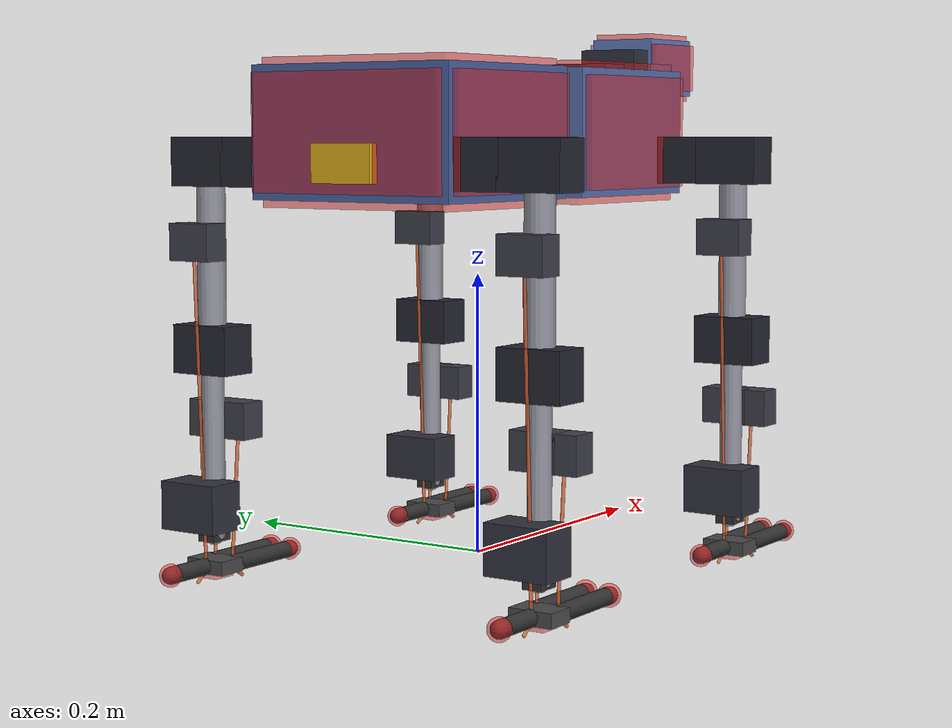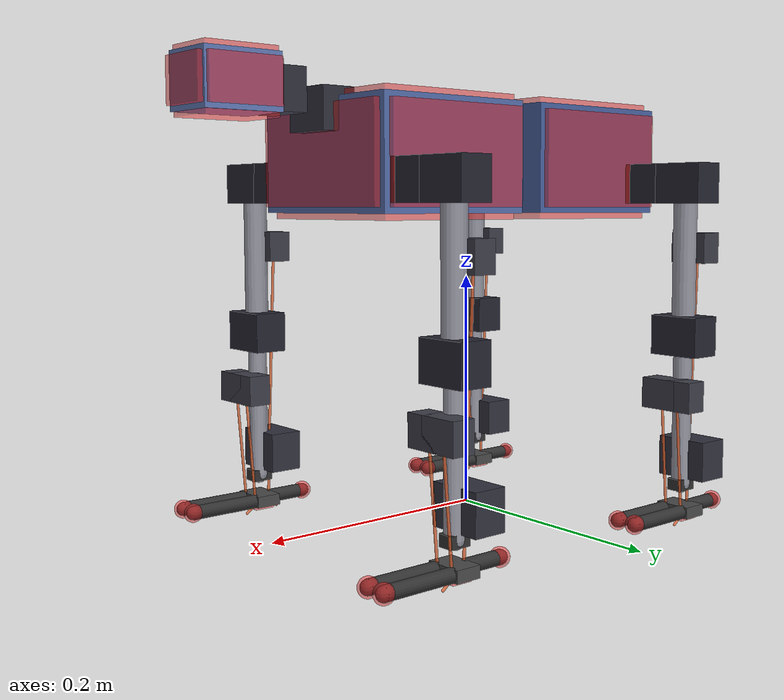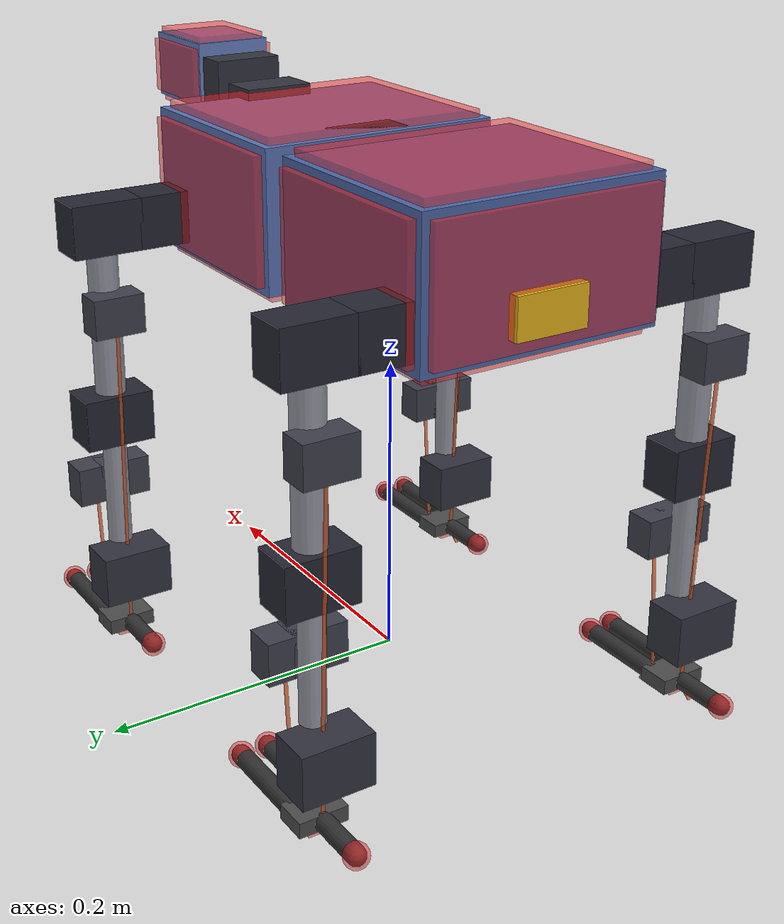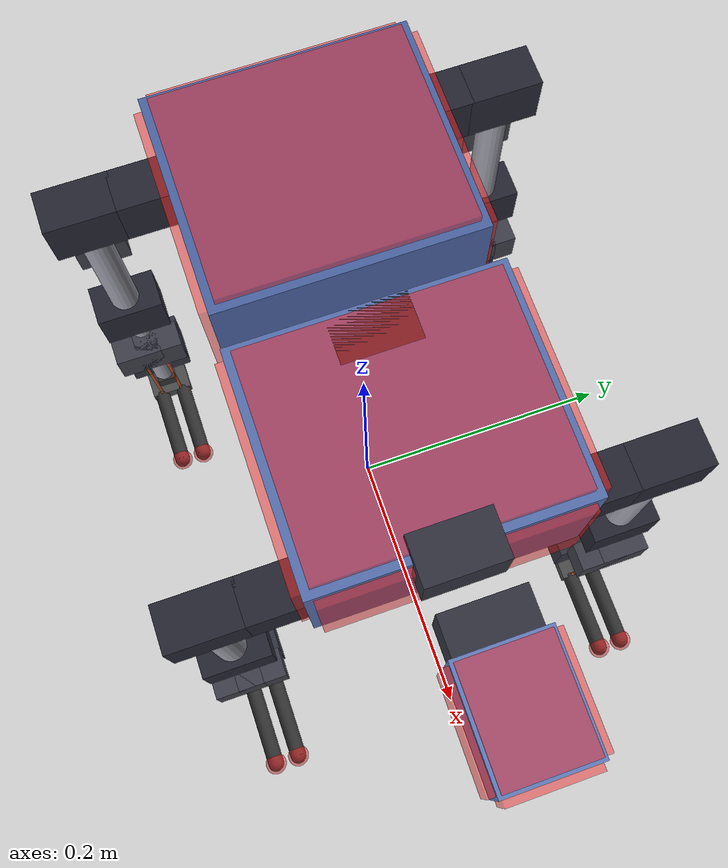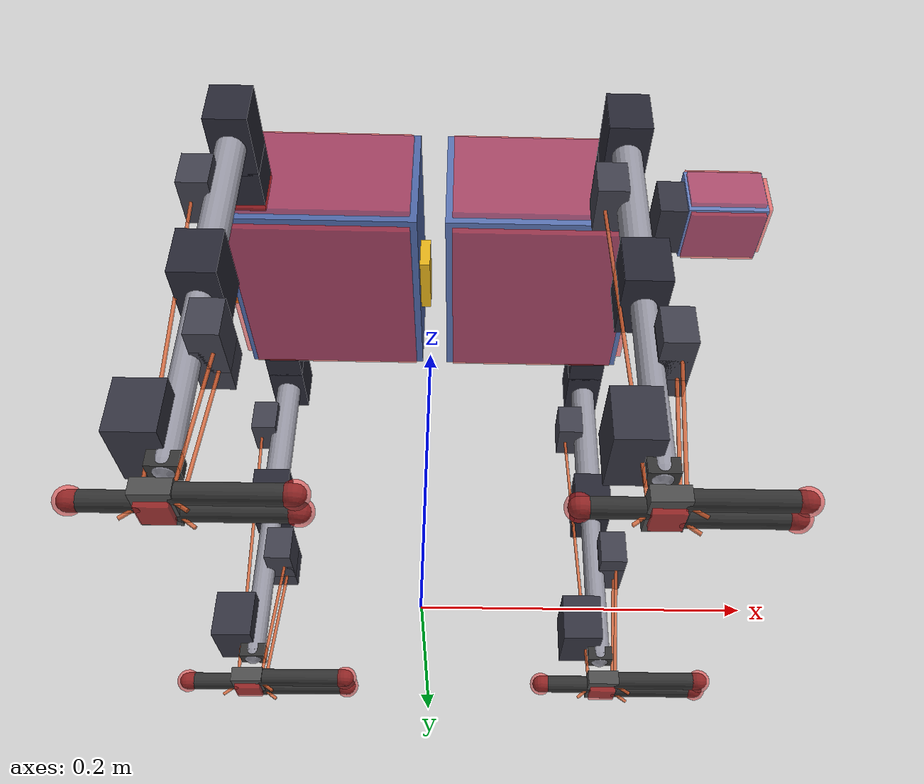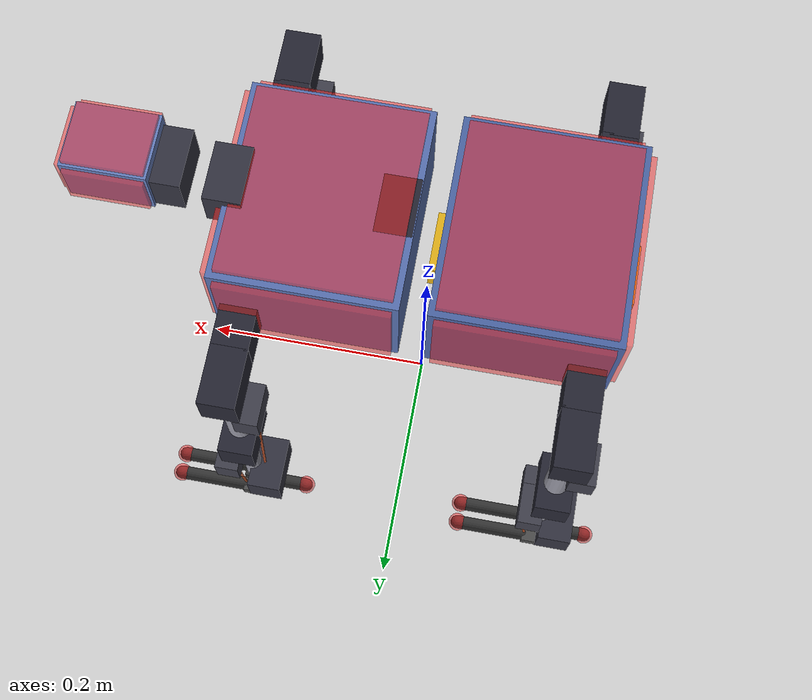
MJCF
<mujoco model="don2">
  <compiler angle="radian" autolimits="true"/>
  <option timestep="0.002" gravity="0 0 -9.81" integrator="implicitfast"/>

  <default>
    <!-- 다리 메인 서보: XM430-W350 (위치제어 서보 그대로 모사) -->
    <default class="xm430">
      <geom type="box" size="0.0143 0.0233 0.017" mass="0.082" contype="0" conaffinity="0" rgba="0.15 0.15 0.2 1"/>
      <joint damping="0.35" armature="0.008" frictionloss="0.06"/>
      <position kp="8" forcerange="-4.1 4.1"/>
    </default>
    <!-- 발목/목 서보: XL430-W250 -->
    <default class="xl430">
      <geom type="box" size="0.0143 0.0233 0.017" mass="0.057" contype="0" conaffinity="0" rgba="0.2 0.2 0.25 1"/>
      <joint damping="0.25" armature="0.005" frictionloss="0.04"/>
      <position kp="4" forcerange="-1.4 1.4"/>
    </default>
    <!-- 발가락 텐던 스풀 모터: XL330-M288 (스풀 r=6mm → 최대 장력 ~86N, 사용범위 0~15N) -->
    <default class="xl330">
      <geom type="box" size="0.010 0.017 0.013" mass="0.023" contype="0" conaffinity="0" rgba="0.25 0.25 0.3 1"/>
    </default>
    <!-- 구조재: 탄소튜브/알루미늄 브래킷 (질량은 각 geom에 명시) -->
    <default class="link">
      <geom type="capsule" rgba="0.6 0.6 0.65 1" friction="1.0 0.01 0.001"/>
    </default>
    <!-- 발가락: 고무 코팅 팁 (마찰 높음), 스프링 복원(신전) + 텐던 굴곡.
         깊은 조임(약 115도)이 가능하도록: 넓은 range + 약한 스프링(0.08) + 굵은 모멘트암(삽입점 10mm) -->
    <default class="toe">
      <joint type="hinge" range="-0.25 2.0" stiffness="0.08" springref="0" damping="0.015" armature="0.0005"/>
      <geom type="capsule" size="0.006" mass="0.008" rgba="0.2 0.2 0.2 1" friction="1.4 0.02 0.002"/>
    </default>
    <!-- 접촉센서 패드: group 1 = 뷰어 기본 표시. 표면에 붉은 반투명 패드로 항상 보임 -->
    <default class="touchsite">
      <site rgba="1 0.15 0.15 0.5" group="1"/>
    </default>
    <default class="mountsite">
      <site rgba="0.3 1 0.3 0.5" group="4" size="0.004"/>
    </default>
    <default class="tendonsite">
      <site rgba="0.9 0.5 0.2 0.6" group="5" size="0.0025"/>
    </default>
  </default>

  <worldbody>
    <!-- ============ 하체(후방 몸통): 배터리 + 뒷다리. 루트 바디 ============ -->
    <body name="torso_rear" pos="0 0 0.30">
      <freejoint/>
      <geom name="torso_rear_frame" type="box" size="0.07 0.08 0.045" pos="-0.08 0 0" mass="0.40"
            rgba="0.3 0.4 0.65 1" friction="1.0 0.005 0.0001"/>
      <!-- 배터리: 3S LiPo 5000mAh, 155x48x26mm, 370g - 하체 하부 배치 -->
      <geom name="battery" type="box" size="0.0775 0.024 0.013" pos="-0.08 0 -0.02" mass="0.37"
            contype="0" conaffinity="0" rgba="0.9 0.7 0.1 1"/>

      <!-- 하체 표면 접촉 센서 5개 -->
      <site name="belly_b_touch" class="touchsite" type="box" pos="-0.08 0 -0.046" size="0.065 0.075 0.004"/>
      <site name="back_b_touch" class="touchsite" type="box" pos="-0.08 0 0.046" size="0.065 0.075 0.004"/>
      <site name="flank_l_b_touch" class="touchsite" type="box" pos="-0.08 0.081 0" size="0.065 0.004 0.04"/>
      <site name="flank_r_b_touch" class="touchsite" type="box" pos="-0.08 -0.081 0" size="0.065 0.004 0.04"/>
      <site name="bumper_b_touch" class="touchsite" type="box" pos="-0.151 0 0" size="0.004 0.075 0.04"/>

      <!-- ============ 상체(전방 몸통): 허리 3자유도(팬/틸트/롤, XM430x3)로 연결 ============ -->
      <body name="torso_front" pos="0.01 0 0">
        <joint name="spine_yaw" axis="0 0 1" range="-0.35 0.35" class="xm430" damping="0.8"/>
        <joint name="spine_pitch" axis="0 1 0" range="-0.3 0.3" class="xm430" damping="0.8"/>
        <joint name="spine_roll" axis="1 0 0" range="-0.25 0.25" class="xm430" damping="0.8"/>
        <!-- 허리 서보 3개 (XM430, 척추부에 물리 배치) -->
        <geom class="xm430" pos="0.015 0.026 0"/>
        <geom class="xm430" pos="0.015 -0.026 0"/>
        <geom class="xm430" pos="0.015 0 0.028"/>
        <geom name="torso_front_frame" type="box" size="0.07 0.08 0.045" pos="0.07 0 0" mass="0.35"
              rgba="0.35 0.45 0.7 1" friction="1.0 0.005 0.0001"/>
        <!-- 온보드 컴퓨터: RPi4급, 100g - 상체 배치 -->
        <geom name="computer" type="box" size="0.035 0.028 0.010" pos="0.05 0 0.02" mass="0.10"
              contype="0" conaffinity="0" rgba="0.1 0.6 0.3 1"/>

        <!-- IMU (BNO085급 9축) 상체 중심 -->
        <site name="imu_site" pos="0.05 0 0.01" class="mountsite"/>
        <!-- 배 밑 바닥색/반사율 센서 (TCS34725급) 마운트 -->
        <site name="ground_sensor_site" pos="0.07 0 -0.047" class="mountsite"/>

        <!-- 상체 표면 접촉 센서 5개 -->
        <site name="belly_f_touch" class="touchsite" type="box" pos="0.07 0 -0.046" size="0.065 0.075 0.004"/>
        <site name="back_f_touch" class="touchsite" type="box" pos="0.07 0 0.046" size="0.065 0.075 0.004"/>
        <site name="flank_l_f_touch" class="touchsite" type="box" pos="0.07 0.081 0" size="0.065 0.004 0.04"/>
        <site name="flank_r_f_touch" class="touchsite" type="box" pos="0.07 -0.081 0" size="0.065 0.004 0.04"/>
        <site name="bumper_f_touch" class="touchsite" type="box" pos="0.141 0 0" size="0.004 0.075 0.04"/>

        <!-- ================= 머리 (전방, 2축 목 + 감각기관 집중) ================= -->
        <body name="neck_base" pos="0.14 0 0.035">
        <joint name="neck_yaw" axis="0 0 1" range="-1.2 1.2" class="xl430"/>
        <geom class="xl430"/>
        <body name="head" pos="0.055 0 0.012">
          <joint name="neck_pitch" axis="0 1 0" range="-0.9 0.6" class="xl430"/>
          <geom class="xl430" pos="-0.012 0 0"/>
          <geom name="head_shell" type="box" size="0.032 0.026 0.022" pos="0.028 0 0.004" mass="0.060"
                rgba="0.4 0.5 0.75 1" friction="1.0 0.005 0.0001"/>

          <!-- 가상센서 마운트: 콧구멍(냄새 좌/우), 광센서 -->
          <site name="nostril_l" pos="0.061 0.013 0.006" class="mountsite"/>
          <site name="nostril_r" pos="0.061 -0.013 0.006" class="mountsite"/>
          <site name="light_sensor_site" pos="0.028 0 0.027" class="mountsite"/>

          <!-- rangefinder 3개: 전방 + 좌/우 절벽감지 (site +Z 방향으로 발사) -->
          <site name="rf_fwd" pos="0.061 0 0.014" zaxis="1 0 0" size="0.003" rgba="0 0.8 1 0.7"/>
          <site name="rf_cliff_l" pos="0.055 0.014 -0.016" zaxis="0.55 0 -0.835" size="0.003" rgba="0 0.8 1 0.7"/>
          <site name="rf_cliff_r" pos="0.055 -0.014 -0.016" zaxis="0.55 0 -0.835" size="0.003" rgba="0 0.8 1 0.7"/>

          <!-- 머리 접촉 센서 5개 -->
          <site name="head_nose_touch" class="touchsite" type="box" pos="0.061 0 0.004" size="0.003 0.024 0.018"/>
          <site name="head_top_touch" class="touchsite" type="box" pos="0.028 0 0.027" size="0.030 0.024 0.003"/>
          <site name="head_chin_touch" class="touchsite" type="box" pos="0.028 0 -0.019" size="0.030 0.024 0.003"/>
          <site name="head_cheek_l_touch" class="touchsite" type="box" pos="0.028 0.027 0.004" size="0.030 0.003 0.018"/>
          <site name="head_cheek_r_touch" class="touchsite" type="box" pos="0.028 -0.027 0.004" size="0.030 0.003 0.018"/>
        </body>
      </body>

      <!-- ================= FL 다리 (상체 소속) ================= -->
      <body name="FL_hip" pos="0.12 0.09 -0.02">
        <joint name="FL_abd" axis="1 0 0" range="-0.5 0.5" class="xm430"/>
        <geom class="xm430"/>
        <body name="FL_thigh" pos="0 0.045 0">
          <joint name="FL_hip_pitch" axis="0 1 0" range="-1.5 1.5" class="xm430"/>
          <geom class="xm430"/>
          <geom name="FL_thigh_link" class="link" fromto="0 0 0 0 0 -0.13" size="0.010" mass="0.040"/>
          <geom class="xm430" pos="0 0 -0.13"/> <!-- 무릎 서보 (허벅지 하단 장착) -->
          <geom class="xl330" pos="-0.014 0 -0.055"/> <!-- 뒷발가락 텐던 스풀 모터 (허벅지 후면) -->
          <site name="FL_spool_b" pos="-0.018 0 -0.060" class="tendonsite"/>
          <body name="FL_calf" pos="0 0 -0.13">
            <joint name="FL_knee" axis="0 1 0" range="-2.4 -0.3" class="xm430"/>
            <geom name="FL_calf_link" class="link" fromto="0 0 0 0 0 -0.13" size="0.008" mass="0.030"/>
            <geom class="xl330" pos="0.013 0.008 -0.050"/>  <!-- 앞발가락1 스풀 (종아리 전면) -->
            <geom class="xl330" pos="0.013 -0.008 -0.050"/> <!-- 앞발가락2 스풀 -->
            <site name="FL_spool_f1" pos="0.017 0.008 -0.056" class="tendonsite"/>
            <site name="FL_spool_f2" pos="0.017 -0.008 -0.056" class="tendonsite"/>
            <site name="FL_calf_back" pos="-0.011 0 -0.095" class="tendonsite"/>
            <geom class="xl430" pos="-0.014 0 -0.108"/> <!-- 발목 서보: 종아리 하단 장착, 브래킷 링키지로 발목 구동(말단 관성 절감) -->
            <body name="FL_foot" pos="0 0 -0.13">
              <joint name="FL_ankle" axis="0 1 0" range="-0.8 1.2" class="xl430"/>
              <geom name="FL_ankle_bracket" type="box" size="0.009 0.007 0.005" mass="0.008"
                    contype="0" conaffinity="0" rgba="0.2 0.2 0.2 1"/>
              <geom name="FL_foot_plate" type="box" size="0.011 0.016 0.005" pos="0 0 -0.022" mass="0.008"
                    rgba="0.3 0.3 0.3 1" friction="1.2 0.01 0.001"/>
              <site name="FL_pulley_f1" pos="0.009 0.008 -0.025" class="tendonsite"/>
              <site name="FL_pulley_f2" pos="0.009 -0.008 -0.025" class="tendonsite"/>
              <site name="FL_pulley_b" pos="-0.009 0 -0.025" class="tendonsite"/>
              <site name="FL_sole_touch" class="touchsite" type="box" pos="0 0 -0.028" size="0.009 0.009 0.0025"/>
              <body name="FL_toe_f1" pos="0.011 0.009 -0.022">
                <joint name="FL_toe_f1_j" class="toe" axis="0 1 0"/>
                <geom class="toe" fromto="0 0 0 0.060 0 0" mass="0.012"/>
                <site name="FL_toe_f1_insert" pos="0.008 0 -0.010" class="tendonsite"/>
                <site name="FL_toe_f1_touch" class="touchsite" pos="0.060 0 0" size="0.008"/>
              </body>
              <body name="FL_toe_f2" pos="0.011 -0.009 -0.022">
                <joint name="FL_toe_f2_j" class="toe" axis="0 1 0"/>
                <geom class="toe" fromto="0 0 0 0.060 0 0" mass="0.012"/>
                <site name="FL_toe_f2_insert" pos="0.008 0 -0.010" class="tendonsite"/>
                <site name="FL_toe_f2_touch" class="touchsite" pos="0.060 0 0" size="0.008"/>
              </body>
              <body name="FL_toe_b" pos="-0.011 0 -0.022">
                <joint name="FL_toe_b_j" class="toe" axis="0 -1 0" range="-0.25 1.8"/>
                <geom class="toe" fromto="0 0 0 -0.034 0 0" mass="0.007"/>
                <site name="FL_toe_b_insert" pos="-0.007 0 -0.010" class="tendonsite"/>
                <site name="FL_toe_b_touch" class="touchsite" pos="-0.034 0 0" size="0.008"/>
              </body>
            </body>
          </body>
        </body>
      </body>

      <!-- ================= FR 다리 (상체 소속) ================= -->
      <body name="FR_hip" pos="0.12 -0.09 -0.02">
        <joint name="FR_abd" axis="1 0 0" range="-0.5 0.5" class="xm430"/>
        <geom class="xm430"/>
        <body name="FR_thigh" pos="0 -0.045 0">
          <joint name="FR_hip_pitch" axis="0 1 0" range="-1.5 1.5" class="xm430"/>
          <geom class="xm430"/>
          <geom name="FR_thigh_link" class="link" fromto="0 0 0 0 0 -0.13" size="0.010" mass="0.040"/>
          <geom class="xm430" pos="0 0 -0.13"/>
          <geom class="xl330" pos="-0.014 0 -0.055"/>
          <site name="FR_spool_b" pos="-0.018 0 -0.060" class="tendonsite"/>
          <body name="FR_calf" pos="0 0 -0.13">
            <joint name="FR_knee" axis="0 1 0" range="-2.4 -0.3" class="xm430"/>
            <geom name="FR_calf_link" class="link" fromto="0 0 0 0 0 -0.13" size="0.008" mass="0.030"/>
            <geom class="xl330" pos="0.013 0.008 -0.050"/>
            <geom class="xl330" pos="0.013 -0.008 -0.050"/>
            <site name="FR_spool_f1" pos="0.017 0.008 -0.056" class="tendonsite"/>
            <site name="FR_spool_f2" pos="0.017 -0.008 -0.056" class="tendonsite"/>
            <site name="FR_calf_back" pos="-0.011 0 -0.095" class="tendonsite"/>
            <geom class="xl430" pos="-0.014 0 -0.108"/>
            <body name="FR_foot" pos="0 0 -0.13">
              <joint name="FR_ankle" axis="0 1 0" range="-0.8 1.2" class="xl430"/>
              <geom name="FR_ankle_bracket" type="box" size="0.009 0.007 0.005" mass="0.008"
                    contype="0" conaffinity="0" rgba="0.2 0.2 0.2 1"/>
              <geom name="FR_foot_plate" type="box" size="0.011 0.016 0.005" pos="0 0 -0.022" mass="0.008"
                    rgba="0.3 0.3 0.3 1" friction="1.2 0.01 0.001"/>
              <site name="FR_pulley_f1" pos="0.009 0.008 -0.025" class="tendonsite"/>
              <site name="FR_pulley_f2" pos="0.009 -0.008 -0.025" class="tendonsite"/>
              <site name="FR_pulley_b" pos="-0.009 0 -0.025" class="tendonsite"/>
              <site name="FR_sole_touch" class="touchsite" type="box" pos="0 0 -0.028" size="0.009 0.009 0.0025"/>
              <body name="FR_toe_f1" pos="0.011 0.009 -0.022">
                <joint name="FR_toe_f1_j" class="toe" axis="0 1 0"/>
                <geom class="toe" fromto="0 0 0 0.060 0 0" mass="0.012"/>
                <site name="FR_toe_f1_insert" pos="0.008 0 -0.010" class="tendonsite"/>
                <site name="FR_toe_f1_touch" class="touchsite" pos="0.060 0 0" size="0.008"/>
              </body>
              <body name="FR_toe_f2" pos="0.011 -0.009 -0.022">
                <joint name="FR_toe_f2_j" class="toe" axis="0 1 0"/>
                <geom class="toe" fromto="0 0 0 0.060 0 0" mass="0.012"/>
                <site name="FR_toe_f2_insert" pos="0.008 0 -0.010" class="tendonsite"/>
                <site name="FR_toe_f2_touch" class="touchsite" pos="0.060 0 0" size="0.008"/>
              </body>
              <body name="FR_toe_b" pos="-0.011 0 -0.022">
                <joint name="FR_toe_b_j" class="toe" axis="0 -1 0" range="-0.25 1.8"/>
                <geom class="toe" fromto="0 0 0 -0.034 0 0" mass="0.007"/>
                <site name="FR_toe_b_insert" pos="-0.007 0 -0.010" class="tendonsite"/>
                <site name="FR_toe_b_touch" class="touchsite" pos="-0.034 0 0" size="0.008"/>
              </body>
            </body>
          </body>
        </body>
      </body>

      </body> <!-- torso_front 끝 -->

      <!-- ================= RL 다리 (하체 소속) ================= -->
      <body name="RL_hip" pos="-0.13 0.09 -0.02">
        <joint name="RL_abd" axis="1 0 0" range="-0.5 0.5" class="xm430"/>
        <geom class="xm430"/>
        <body name="RL_thigh" pos="0 0.045 0">
          <joint name="RL_hip_pitch" axis="0 1 0" range="-1.5 1.5" class="xm430"/>
          <geom class="xm430"/>
          <geom name="RL_thigh_link" class="link" fromto="0 0 0 0 0 -0.13" size="0.010" mass="0.040"/>
          <geom class="xm430" pos="0 0 -0.13"/>
          <geom class="xl330" pos="-0.014 0 -0.055"/>
          <site name="RL_spool_b" pos="-0.018 0 -0.060" class="tendonsite"/>
          <body name="RL_calf" pos="0 0 -0.13">
            <joint name="RL_knee" axis="0 1 0" range="-2.4 -0.3" class="xm430"/>
            <geom name="RL_calf_link" class="link" fromto="0 0 0 0 0 -0.13" size="0.008" mass="0.030"/>
            <geom class="xl330" pos="0.013 0.008 -0.050"/>
            <geom class="xl330" pos="0.013 -0.008 -0.050"/>
            <site name="RL_spool_f1" pos="0.017 0.008 -0.056" class="tendonsite"/>
            <site name="RL_spool_f2" pos="0.017 -0.008 -0.056" class="tendonsite"/>
            <site name="RL_calf_back" pos="-0.011 0 -0.095" class="tendonsite"/>
            <geom class="xl430" pos="-0.014 0 -0.108"/>
            <body name="RL_foot" pos="0 0 -0.13">
              <joint name="RL_ankle" axis="0 1 0" range="-0.8 1.2" class="xl430"/>
              <geom name="RL_ankle_bracket" type="box" size="0.009 0.007 0.005" mass="0.008"
                    contype="0" conaffinity="0" rgba="0.2 0.2 0.2 1"/>
              <geom name="RL_foot_plate" type="box" size="0.011 0.016 0.005" pos="0 0 -0.022" mass="0.008"
                    rgba="0.3 0.3 0.3 1" friction="1.2 0.01 0.001"/>
              <site name="RL_pulley_f1" pos="0.009 0.008 -0.025" class="tendonsite"/>
              <site name="RL_pulley_f2" pos="0.009 -0.008 -0.025" class="tendonsite"/>
              <site name="RL_pulley_b" pos="-0.009 0 -0.025" class="tendonsite"/>
              <site name="RL_sole_touch" class="touchsite" type="box" pos="0 0 -0.028" size="0.009 0.009 0.0025"/>
              <body name="RL_toe_f1" pos="0.011 0.009 -0.022">
                <joint name="RL_toe_f1_j" class="toe" axis="0 1 0"/>
                <geom class="toe" fromto="0 0 0 0.060 0 0" mass="0.012"/>
                <site name="RL_toe_f1_insert" pos="0.008 0 -0.010" class="tendonsite"/>
                <site name="RL_toe_f1_touch" class="touchsite" pos="0.060 0 0" size="0.008"/>
              </body>
              <body name="RL_toe_f2" pos="0.011 -0.009 -0.022">
                <joint name="RL_toe_f2_j" class="toe" axis="0 1 0"/>
                <geom class="toe" fromto="0 0 0 0.060 0 0" mass="0.012"/>
                <site name="RL_toe_f2_insert" pos="0.008 0 -0.010" class="tendonsite"/>
                <site name="RL_toe_f2_touch" class="touchsite" pos="0.060 0 0" size="0.008"/>
              </body>
              <body name="RL_toe_b" pos="-0.011 0 -0.022">
                <joint name="RL_toe_b_j" class="toe" axis="0 -1 0" range="-0.25 1.8"/>
                <geom class="toe" fromto="0 0 0 -0.034 0 0" mass="0.007"/>
                <site name="RL_toe_b_insert" pos="-0.007 0 -0.010" class="tendonsite"/>
                <site name="RL_toe_b_touch" class="touchsite" pos="-0.034 0 0" size="0.008"/>
              </body>
            </body>
          </body>
        </body>
      </body>

      <!-- ================= RR 다리 ================= -->
      <body name="RR_hip" pos="-0.13 -0.09 -0.02">
        <joint name="RR_abd" axis="1 0 0" range="-0.5 0.5" class="xm430"/>
        <geom class="xm430"/>
        <body name="RR_thigh" pos="0 -0.045 0">
          <joint name="RR_hip_pitch" axis="0 1 0" range="-1.5 1.5" class="xm430"/>
          <geom class="xm430"/>
          <geom name="RR_thigh_link" class="link" fromto="0 0 0 0 0 -0.13" size="0.010" mass="0.040"/>
          <geom class="xm430" pos="0 0 -0.13"/>
          <geom class="xl330" pos="-0.014 0 -0.055"/>
          <site name="RR_spool_b" pos="-0.018 0 -0.060" class="tendonsite"/>
          <body name="RR_calf" pos="0 0 -0.13">
            <joint name="RR_knee" axis="0 1 0" range="-2.4 -0.3" class="xm430"/>
            <geom name="RR_calf_link" class="link" fromto="0 0 0 0 0 -0.13" size="0.008" mass="0.030"/>
            <geom class="xl330" pos="0.013 0.008 -0.050"/>
            <geom class="xl330" pos="0.013 -0.008 -0.050"/>
            <site name="RR_spool_f1" pos="0.017 0.008 -0.056" class="tendonsite"/>
            <site name="RR_spool_f2" pos="0.017 -0.008 -0.056" class="tendonsite"/>
            <site name="RR_calf_back" pos="-0.011 0 -0.095" class="tendonsite"/>
            <geom class="xl430" pos="-0.014 0 -0.108"/>
            <body name="RR_foot" pos="0 0 -0.13">
              <joint name="RR_ankle" axis="0 1 0" range="-0.8 1.2" class="xl430"/>
              <geom name="RR_ankle_bracket" type="box" size="0.009 0.007 0.005" mass="0.008"
                    contype="0" conaffinity="0" rgba="0.2 0.2 0.2 1"/>
              <geom name="RR_foot_plate" type="box" size="0.011 0.016 0.005" pos="0 0 -0.022" mass="0.008"
                    rgba="0.3 0.3 0.3 1" friction="1.2 0.01 0.001"/>
              <site name="RR_pulley_f1" pos="0.009 0.008 -0.025" class="tendonsite"/>
              <site name="RR_pulley_f2" pos="0.009 -0.008 -0.025" class="tendonsite"/>
              <site name="RR_pulley_b" pos="-0.009 0 -0.025" class="tendonsite"/>
              <site name="RR_sole_touch" class="touchsite" type="box" pos="0 0 -0.028" size="0.009 0.009 0.0025"/>
              <body name="RR_toe_f1" pos="0.011 0.009 -0.022">
                <joint name="RR_toe_f1_j" class="toe" axis="0 1 0"/>
                <geom class="toe" fromto="0 0 0 0.060 0 0" mass="0.012"/>
                <site name="RR_toe_f1_insert" pos="0.008 0 -0.010" class="tendonsite"/>
                <site name="RR_toe_f1_touch" class="touchsite" pos="0.060 0 0" size="0.008"/>
              </body>
              <body name="RR_toe_f2" pos="0.011 -0.009 -0.022">
                <joint name="RR_toe_f2_j" class="toe" axis="0 1 0"/>
                <geom class="toe" fromto="0 0 0 0.060 0 0" mass="0.012"/>
                <site name="RR_toe_f2_insert" pos="0.008 0 -0.010" class="tendonsite"/>
                <site name="RR_toe_f2_touch" class="touchsite" pos="0.060 0 0" size="0.008"/>
              </body>
              <body name="RR_toe_b" pos="-0.011 0 -0.022">
                <joint name="RR_toe_b_j" class="toe" axis="0 -1 0" range="-0.25 1.8"/>
                <geom class="toe" fromto="0 0 0 -0.034 0 0" mass="0.007"/>
                <site name="RR_toe_b_insert" pos="-0.007 0 -0.010" class="tendonsite"/>
                <site name="RR_toe_b_touch" class="touchsite" pos="-0.034 0 0" size="0.008"/>
              </body>
            </body>
          </body>
        </body>
      </body>
    </body>
  </worldbody>

  <!-- ================= 텐던 (발가락 굴곡 와이어) ================= -->
  <!-- 앞발가락: 종아리 스풀 → 발 앞 풀리 → 발가락 하면 삽입점. 당기면(단축) 굴곡, 스프링이 신전 복원.
       뒷발가락: 허벅지 스풀 → 종아리 후면 → 발 뒤 풀리 → 삽입점 (무릎·발목을 가로지르는 생체형 장텐던). -->
  <tendon>
    <spatial name="FL_toe_f1_t" width="0.0012" rgba="0.9 0.4 0.2 0.8">
      <site site="FL_spool_f1"/><site site="FL_pulley_f1"/><site site="FL_toe_f1_insert"/>
    </spatial>
    <spatial name="FL_toe_f2_t" width="0.0012" rgba="0.9 0.4 0.2 0.8">
      <site site="FL_spool_f2"/><site site="FL_pulley_f2"/><site site="FL_toe_f2_insert"/>
    </spatial>
    <spatial name="FL_toe_b_t" width="0.0012" rgba="0.9 0.4 0.2 0.8">
      <site site="FL_spool_b"/><site site="FL_calf_back"/><site site="FL_pulley_b"/><site site="FL_toe_b_insert"/>
    </spatial>
    <spatial name="FR_toe_f1_t" width="0.0012" rgba="0.9 0.4 0.2 0.8">
      <site site="FR_spool_f1"/><site site="FR_pulley_f1"/><site site="FR_toe_f1_insert"/>
    </spatial>
    <spatial name="FR_toe_f2_t" width="0.0012" rgba="0.9 0.4 0.2 0.8">
      <site site="FR_spool_f2"/><site site="FR_pulley_f2"/><site site="FR_toe_f2_insert"/>
    </spatial>
    <spatial name="FR_toe_b_t" width="0.0012" rgba="0.9 0.4 0.2 0.8">
      <site site="FR_spool_b"/><site site="FR_calf_back"/><site site="FR_pulley_b"/><site site="FR_toe_b_insert"/>
    </spatial>
    <spatial name="RL_toe_f1_t" width="0.0012" rgba="0.9 0.4 0.2 0.8">
      <site site="RL_spool_f1"/><site site="RL_pulley_f1"/><site site="RL_toe_f1_insert"/>
    </spatial>
    <spatial name="RL_toe_f2_t" width="0.0012" rgba="0.9 0.4 0.2 0.8">
      <site site="RL_spool_f2"/><site site="RL_pulley_f2"/><site site="RL_toe_f2_insert"/>
    </spatial>
    <spatial name="RL_toe_b_t" width="0.0012" rgba="0.9 0.4 0.2 0.8">
      <site site="RL_spool_b"/><site site="RL_calf_back"/><site site="RL_pulley_b"/><site site="RL_toe_b_insert"/>
    </spatial>
    <spatial name="RR_toe_f1_t" width="0.0012" rgba="0.9 0.4 0.2 0.8">
      <site site="RR_spool_f1"/><site site="RR_pulley_f1"/><site site="RR_toe_f1_insert"/>
    </spatial>
    <spatial name="RR_toe_f2_t" width="0.0012" rgba="0.9 0.4 0.2 0.8">
      <site site="RR_spool_f2"/><site site="RR_pulley_f2"/><site site="RR_toe_f2_insert"/>
    </spatial>
    <spatial name="RR_toe_b_t" width="0.0012" rgba="0.9 0.4 0.2 0.8">
      <site site="RR_spool_b"/><site site="RR_calf_back"/><site site="RR_pulley_b"/><site site="RR_toe_b_insert"/>
    </spatial>
  </tendon>

  <!-- ================= 액추에이터 ================= -->
  <actuator>
    <!-- 허리(상하체 연결): XM430 위치 서보 3축 (팬/틸트/롤) -->
    <position name="spine_yaw_act" joint="spine_yaw" class="xm430" ctrlrange="-0.35 0.35"/>
    <position name="spine_pitch_act" joint="spine_pitch" class="xm430" ctrlrange="-0.3 0.3"/>
    <position name="spine_roll_act" joint="spine_roll" class="xm430" ctrlrange="-0.25 0.25"/>
    <!-- 목: XL430 위치 서보 -->
    <position name="neck_yaw_act" joint="neck_yaw" class="xl430" ctrlrange="-1.2 1.2"/>
    <position name="neck_pitch_act" joint="neck_pitch" class="xl430" ctrlrange="-0.9 0.6"/>
    <!-- 다리: XM430(힙외전/힙피치/무릎) + XL430(발목) 위치 서보 -->
    <position name="FL_abd_act" joint="FL_abd" class="xm430" ctrlrange="-0.5 0.5"/>
    <position name="FL_hip_act" joint="FL_hip_pitch" class="xm430" ctrlrange="-1.5 1.5"/>
    <position name="FL_knee_act" joint="FL_knee" class="xm430" ctrlrange="-2.4 -0.3"/>
    <position name="FL_ankle_act" joint="FL_ankle" class="xl430" ctrlrange="-0.8 1.2"/>
    <position name="FR_abd_act" joint="FR_abd" class="xm430" ctrlrange="-0.5 0.5"/>
    <position name="FR_hip_act" joint="FR_hip_pitch" class="xm430" ctrlrange="-1.5 1.5"/>
    <position name="FR_knee_act" joint="FR_knee" class="xm430" ctrlrange="-2.4 -0.3"/>
    <position name="FR_ankle_act" joint="FR_ankle" class="xl430" ctrlrange="-0.8 1.2"/>
    <position name="RL_abd_act" joint="RL_abd" class="xm430" ctrlrange="-0.5 0.5"/>
    <position name="RL_hip_act" joint="RL_hip_pitch" class="xm430" ctrlrange="-1.5 1.5"/>
    <position name="RL_knee_act" joint="RL_knee" class="xm430" ctrlrange="-2.4 -0.3"/>
    <position name="RL_ankle_act" joint="RL_ankle" class="xl430" ctrlrange="-0.8 1.2"/>
    <position name="RR_abd_act" joint="RR_abd" class="xm430" ctrlrange="-0.5 0.5"/>
    <position name="RR_hip_act" joint="RR_hip_pitch" class="xm430" ctrlrange="-1.5 1.5"/>
    <position name="RR_knee_act" joint="RR_knee" class="xm430" ctrlrange="-2.4 -0.3"/>
    <position name="RR_ankle_act" joint="RR_ankle" class="xl430" ctrlrange="-0.8 1.2"/>
    <!-- 발가락 텐던: XL330 스풀. 당김(장력) 전용, ctrl = 장력[N] 0~15 -->
    <motor name="FL_toe_f1_act" tendon="FL_toe_f1_t" gear="-1" ctrlrange="0 30"/>
    <motor name="FL_toe_f2_act" tendon="FL_toe_f2_t" gear="-1" ctrlrange="0 30"/>
    <motor name="FL_toe_b_act" tendon="FL_toe_b_t" gear="-1" ctrlrange="0 30"/>
    <motor name="FR_toe_f1_act" tendon="FR_toe_f1_t" gear="-1" ctrlrange="0 30"/>
    <motor name="FR_toe_f2_act" tendon="FR_toe_f2_t" gear="-1" ctrlrange="0 30"/>
    <motor name="FR_toe_b_act" tendon="FR_toe_b_t" gear="-1" ctrlrange="0 30"/>
    <motor name="RL_toe_f1_act" tendon="RL_toe_f1_t" gear="-1" ctrlrange="0 30"/>
    <motor name="RL_toe_f2_act" tendon="RL_toe_f2_t" gear="-1" ctrlrange="0 30"/>
    <motor name="RL_toe_b_act" tendon="RL_toe_b_t" gear="-1" ctrlrange="0 30"/>
    <motor name="RR_toe_f1_act" tendon="RR_toe_f1_t" gear="-1" ctrlrange="0 30"/>
    <motor name="RR_toe_f2_act" tendon="RR_toe_f2_t" gear="-1" ctrlrange="0 30"/>
    <motor name="RR_toe_b_act" tendon="RR_toe_b_t" gear="-1" ctrlrange="0 30"/>
  </actuator>

  <!-- ================= 센서 ================= -->
  <sensor>
    <!-- 관절 회전각/각속도: 전 관절 33개 -->
    <jointpos name="spine_yaw_pos" joint="spine_yaw"/>
    <jointpos name="spine_pitch_pos" joint="spine_pitch"/>
    <jointpos name="spine_roll_pos" joint="spine_roll"/>
    <jointvel name="spine_yaw_vel" joint="spine_yaw"/>
    <jointvel name="spine_pitch_vel" joint="spine_pitch"/>
    <jointvel name="spine_roll_vel" joint="spine_roll"/>
    <jointpos name="neck_yaw_pos" joint="neck_yaw"/>
    <jointpos name="neck_pitch_pos" joint="neck_pitch"/>
    <jointvel name="neck_yaw_vel" joint="neck_yaw"/>
    <jointvel name="neck_pitch_vel" joint="neck_pitch"/>

    <jointpos name="FL_abd_pos" joint="FL_abd"/>
    <jointpos name="FL_hip_pos" joint="FL_hip_pitch"/>
    <jointpos name="FL_knee_pos" joint="FL_knee"/>
    <jointpos name="FL_ankle_pos" joint="FL_ankle"/>
    <jointpos name="FL_toe_f1_pos" joint="FL_toe_f1_j"/>
    <jointpos name="FL_toe_f2_pos" joint="FL_toe_f2_j"/>
    <jointpos name="FL_toe_b_pos" joint="FL_toe_b_j"/>
    <jointvel name="FL_abd_vel" joint="FL_abd"/>
    <jointvel name="FL_hip_vel" joint="FL_hip_pitch"/>
    <jointvel name="FL_knee_vel" joint="FL_knee"/>
    <jointvel name="FL_ankle_vel" joint="FL_ankle"/>
    <jointvel name="FL_toe_f1_vel" joint="FL_toe_f1_j"/>
    <jointvel name="FL_toe_f2_vel" joint="FL_toe_f2_j"/>
    <jointvel name="FL_toe_b_vel" joint="FL_toe_b_j"/>

    <jointpos name="FR_abd_pos" joint="FR_abd"/>
    <jointpos name="FR_hip_pos" joint="FR_hip_pitch"/>
    <jointpos name="FR_knee_pos" joint="FR_knee"/>
    <jointpos name="FR_ankle_pos" joint="FR_ankle"/>
    <jointpos name="FR_toe_f1_pos" joint="FR_toe_f1_j"/>
    <jointpos name="FR_toe_f2_pos" joint="FR_toe_f2_j"/>
    <jointpos name="FR_toe_b_pos" joint="FR_toe_b_j"/>
    <jointvel name="FR_abd_vel" joint="FR_abd"/>
    <jointvel name="FR_hip_vel" joint="FR_hip_pitch"/>
    <jointvel name="FR_knee_vel" joint="FR_knee"/>
    <jointvel name="FR_ankle_vel" joint="FR_ankle"/>
    <jointvel name="FR_toe_f1_vel" joint="FR_toe_f1_j"/>
    <jointvel name="FR_toe_f2_vel" joint="FR_toe_f2_j"/>
    <jointvel name="FR_toe_b_vel" joint="FR_toe_b_j"/>

    <jointpos name="RL_abd_pos" joint="RL_abd"/>
    <jointpos name="RL_hip_pos" joint="RL_hip_pitch"/>
    <jointpos name="RL_knee_pos" joint="RL_knee"/>
    <jointpos name="RL_ankle_pos" joint="RL_ankle"/>
    <jointpos name="RL_toe_f1_pos" joint="RL_toe_f1_j"/>
    <jointpos name="RL_toe_f2_pos" joint="RL_toe_f2_j"/>
    <jointpos name="RL_toe_b_pos" joint="RL_toe_b_j"/>
    <jointvel name="RL_abd_vel" joint="RL_abd"/>
    <jointvel name="RL_hip_vel" joint="RL_hip_pitch"/>
    <jointvel name="RL_knee_vel" joint="RL_knee"/>
    <jointvel name="RL_ankle_vel" joint="RL_ankle"/>
    <jointvel name="RL_toe_f1_vel" joint="RL_toe_f1_j"/>
    <jointvel name="RL_toe_f2_vel" joint="RL_toe_f2_j"/>
    <jointvel name="RL_toe_b_vel" joint="RL_toe_b_j"/>

    <jointpos name="RR_abd_pos" joint="RR_abd"/>
    <jointpos name="RR_hip_pos" joint="RR_hip_pitch"/>
    <jointpos name="RR_knee_pos" joint="RR_knee"/>
    <jointpos name="RR_ankle_pos" joint="RR_ankle"/>
    <jointpos name="RR_toe_f1_pos" joint="RR_toe_f1_j"/>
    <jointpos name="RR_toe_f2_pos" joint="RR_toe_f2_j"/>
    <jointpos name="RR_toe_b_pos" joint="RR_toe_b_j"/>
    <jointvel name="RR_abd_vel" joint="RR_abd"/>
    <jointvel name="RR_hip_vel" joint="RR_hip_pitch"/>
    <jointvel name="RR_knee_vel" joint="RR_knee"/>
    <jointvel name="RR_ankle_vel" joint="RR_ankle"/>
    <jointvel name="RR_toe_f1_vel" joint="RR_toe_f1_j"/>
    <jointvel name="RR_toe_f2_vel" joint="RR_toe_f2_j"/>
    <jointvel name="RR_toe_b_vel" joint="RR_toe_b_j"/>

    <!-- IMU 9축 + 속도계 (BNO085급, 몸통 중심) -->
    <framequat name="imu_orient" objtype="site" objname="imu_site"/>
    <gyro name="imu_gyro" site="imu_site"/>
    <accelerometer name="imu_acc" site="imu_site"/>
    <magnetometer name="imu_mag" site="imu_site"/>
    <velocimeter name="imu_vel" site="imu_site"/>

    <!-- rangefinder: 전방 + 절벽감지 좌/우 (머리에 장착, 목과 함께 회전) -->
    <rangefinder name="rf_forward" site="rf_fwd"/>
    <rangefinder name="rf_cliff_left" site="rf_cliff_l"/>
    <rangefinder name="rf_cliff_right" site="rf_cliff_r"/>

    <!-- 접촉 센서 27개: 머리5 + 몸통6 + 발바닥4 + 발가락끝12 -->
    <touch name="head_nose_t" site="head_nose_touch"/>
    <touch name="head_top_t" site="head_top_touch"/>
    <touch name="head_chin_t" site="head_chin_touch"/>
    <touch name="head_cheek_l_t" site="head_cheek_l_touch"/>
    <touch name="head_cheek_r_t" site="head_cheek_r_touch"/>
    <touch name="belly_f_t" site="belly_f_touch"/>
    <touch name="back_f_t" site="back_f_touch"/>
    <touch name="flank_l_f_t" site="flank_l_f_touch"/>
    <touch name="flank_r_f_t" site="flank_r_f_touch"/>
    <touch name="bumper_f_t" site="bumper_f_touch"/>
    <touch name="belly_b_t" site="belly_b_touch"/>
    <touch name="back_b_t" site="back_b_touch"/>
    <touch name="flank_l_b_t" site="flank_l_b_touch"/>
    <touch name="flank_r_b_t" site="flank_r_b_touch"/>
    <touch name="bumper_b_t" site="bumper_b_touch"/>
    <touch name="FL_sole_t" site="FL_sole_touch"/>
    <touch name="FL_toe_f1_t" site="FL_toe_f1_touch"/>
    <touch name="FL_toe_f2_t" site="FL_toe_f2_touch"/>
    <touch name="FL_toe_b_t" site="FL_toe_b_touch"/>
    <touch name="FR_sole_t" site="FR_sole_touch"/>
    <touch name="FR_toe_f1_t" site="FR_toe_f1_touch"/>
    <touch name="FR_toe_f2_t" site="FR_toe_f2_touch"/>
    <touch name="FR_toe_b_t" site="FR_toe_b_touch"/>
    <touch name="RL_sole_t" site="RL_sole_touch"/>
    <touch name="RL_toe_f1_t" site="RL_toe_f1_touch"/>
    <touch name="RL_toe_f2_t" site="RL_toe_f2_touch"/>
    <touch name="RL_toe_b_t" site="RL_toe_b_touch"/>
    <touch name="RR_sole_t" site="RR_sole_touch"/>
    <touch name="RR_toe_f1_t" site="RR_toe_f1_touch"/>
    <touch name="RR_toe_f2_t" site="RR_toe_f2_touch"/>
    <touch name="RR_toe_b_t" site="RR_toe_b_touch"/>

    <!-- 서보 부하(전류 감지 모사): 다리 16 + 허리 3 + 목 2 -->
    <actuatorfrc name="spine_yaw_frc" actuator="spine_yaw_act"/>
    <actuatorfrc name="spine_pitch_frc" actuator="spine_pitch_act"/>
    <actuatorfrc name="spine_roll_frc" actuator="spine_roll_act"/>
    <actuatorfrc name="neck_yaw_frc" actuator="neck_yaw_act"/>
    <actuatorfrc name="neck_pitch_frc" actuator="neck_pitch_act"/>
    <actuatorfrc name="FL_abd_frc" actuator="FL_abd_act"/>
    <actuatorfrc name="FL_hip_frc" actuator="FL_hip_act"/>
    <actuatorfrc name="FL_knee_frc" actuator="FL_knee_act"/>
    <actuatorfrc name="FL_ankle_frc" actuator="FL_ankle_act"/>
    <actuatorfrc name="FR_abd_frc" actuator="FR_abd_act"/>
    <actuatorfrc name="FR_hip_frc" actuator="FR_hip_act"/>
    <actuatorfrc name="FR_knee_frc" actuator="FR_knee_act"/>
    <actuatorfrc name="FR_ankle_frc" actuator="FR_ankle_act"/>
    <actuatorfrc name="RL_abd_frc" actuator="RL_abd_act"/>
    <actuatorfrc name="RL_hip_frc" actuator="RL_hip_act"/>
    <actuatorfrc name="RL_knee_frc" actuator="RL_knee_act"/>
    <actuatorfrc name="RL_ankle_frc" actuator="RL_ankle_act"/>
    <actuatorfrc name="RR_abd_frc" actuator="RR_abd_act"/>
    <actuatorfrc name="RR_hip_frc" actuator="RR_hip_act"/>
    <actuatorfrc name="RR_knee_frc" actuator="RR_knee_act"/>
    <actuatorfrc name="RR_ankle_frc" actuator="RR_ankle_act"/>
    <!-- 발가락 텐던 장력 감지 12 -->
    <actuatorfrc name="FL_toe_f1_frc" actuator="FL_toe_f1_act"/>
    <actuatorfrc name="FL_toe_f2_frc" actuator="FL_toe_f2_act"/>
    <actuatorfrc name="FL_toe_b_frc" actuator="FL_toe_b_act"/>
    <actuatorfrc name="FR_toe_f1_frc" actuator="FR_toe_f1_act"/>
    <actuatorfrc name="FR_toe_f2_frc" actuator="FR_toe_f2_act"/>
    <actuatorfrc name="FR_toe_b_frc" actuator="FR_toe_b_act"/>
    <actuatorfrc name="RL_toe_f1_frc" actuator="RL_toe_f1_act"/>
    <actuatorfrc name="RL_toe_f2_frc" actuator="RL_toe_f2_act"/>
    <actuatorfrc name="RL_toe_b_frc" actuator="RL_toe_b_act"/>
    <actuatorfrc name="RR_toe_f1_frc" actuator="RR_toe_f1_act"/>
    <actuatorfrc name="RR_toe_f2_frc" actuator="RR_toe_f2_act"/>
    <actuatorfrc name="RR_toe_b_frc" actuator="RR_toe_b_act"/>
  </sensor>

  <keyframe>
    <!-- 서 있는 기본 자세: 힙피치 0.8, 무릎 -1.5, 발목 0.7 (발바닥 수평) -->
    <key name="home"
         qpos="0 0 0.24  1 0 0 0
               0 0 0
               0 0
               0 0.8 -1.5 0.7 0 0 0
               0 0.8 -1.5 0.7 0 0 0
               0 0.8 -1.5 0.7 0 0 0
               0 0.8 -1.5 0.7 0 0 0"
         ctrl="0 0 0
               0 0
               0 0.8 -1.5 0.7
               0 0.8 -1.5 0.7
               0 0.8 -1.5 0.7
               0 0.8 -1.5 0.7
               0 0 0 0 0 0 0 0 0 0 0 0"/>
  </keyframe>
</mujoco>
